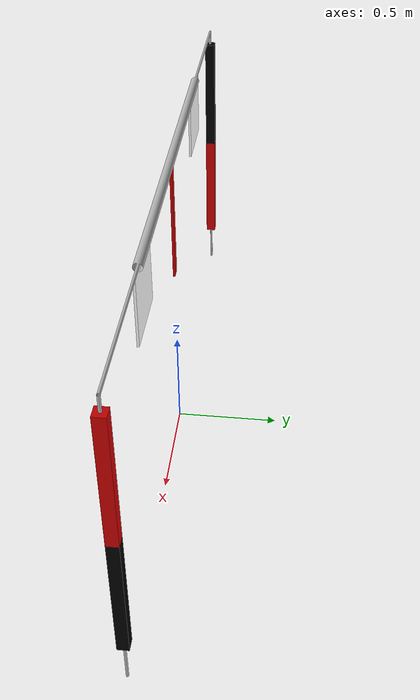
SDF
<?xml version="1.0"?>
<sdf version="1.11">
  <model name="robosub25_gate">
    <static>1</static>

    <link name="gate">
      <pose>0 0 0 0 0 0</pose>
      <visual name="gate_vis">
        <pose>0 0 0 1.57079632679 0 0</pose>
        <geometry>
          <mesh>
            <uri>model://robosub_gate_base/gate.obj</uri>
          </mesh>
        </geometry>
      </visual>
      <collision name="gate_collision">
        <pose>0 0 0 0 0 0</pose>
        <geometry>
          <mesh>
            <uri>model://robosub_gate_base/gate.stl</uri>
          </mesh>
        </geometry>
      </collision>
    </link>

    <link name="box_reef_shark">
      <pose>-0.75 0 1.3476 0 0 0</pose>
      <visual name="box_reef_shark_vis">
        <geometry>
          <box>
            <size>0.305 0.01 0.305</size>
          </box>
        </geometry>
        <material>
          <diffuse>1.0 1.0 1.0</diffuse>
          <specular>1.0 1.0 1.0</specular>
          <pbr>
            <metal>
              <albedo_map>file://media/materials/textures/robosub25/Task01_ReefShark.png</albedo_map>
              <emissive_map>file://media/materials/textures/robosub25/Task01_ReefShark.png</emissive_map>
            </metal>
          </pbr>
        </material>
      </visual>
    </link>

    <link name="box_saw_fish">
      <pose>0.75 0 1.3476 0 0 0</pose>
      <visual name="box_saw_fish_vis">
        <geometry>
          <box>
            <size>0.305 0.01 0.305</size>
          </box>
        </geometry>
        <material>
          <diffuse>1.0 1.0 1.0</diffuse>
          <specular>1.0 1.0 1.0</specular>
          <pbr>
            <metal>
              <albedo_map>file://media/materials/textures/robosub25/Task01_Sawfish.png</albedo_map>
              <emissive_map>file://media/materials/textures/robosub25/Task01_Sawfish.png</emissive_map>
            </metal>
          </pbr>
        </material>
      </visual>
    </link>
  </model>
</sdf>
